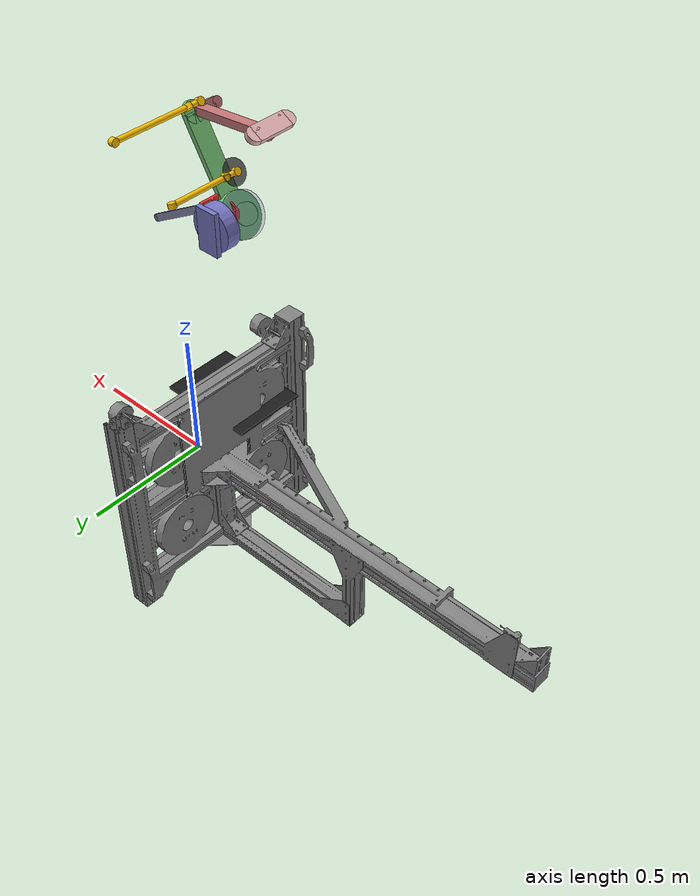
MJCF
<mujoco model="leg_two">
    <default>
        <geom contype="1" conaffinity="0" solref="0.005 1.0"/>

        <default class="part">
        <geom group="1" contype="2" conaffinity="1"/>
        </default>

        <default class="mockup">
        <geom group="1" contype="4"/>
        </default>

    </default>

    <asset>
        <material name="pelvis" rgba="0.45 0.45 0.75 1.0" />
        <material name="thigh" rgba="0.45 0.75 0.45 1.0" />
        <material name="shin" rgba="0.75 0.45 0.45 1.0" />
        <material name="foot" rgba="0.86 0.68 0.68 1.0" />
        <material name="loop1" rgba="0.52 0.52 0.65 1.0" />
        <material name="loop2" rgba="1.0 0.75 0.0 1.0" />
        <mesh name="cart" file="cart.STL"/>
        <mesh name="base" file="base.stl"/>
    </asset>

    <worldbody>
        <body name="base" pos="0.0 0.0 0.0">
            <!-- стойка робота -->
            <geom type="mesh" mesh="base" euler="0.0 0.0 90.0"  class="mockup"/>
            <!-- резиновый коврик -->
            <geom type="box" size="0.2 0.15 0.005" pos="0.0 -0.2 0.15" density="7700.0" rgba="0.1 0.1 0.1 1.0"/>

            <body name="cart" pos="0.0325 -0.14 1.0">
                <!-- каретка; к ней подсоединена вся нога -->
                <geom type="mesh" mesh="cart" euler="0.0 -180.0 -90.0" mass="0.2" rgba="0.9 0.2 0.2 1.0" class="mockup"/>
                <joint name="rail" type="slide" range="-0.0 0.5"/>

                <body name="pelvis" pos="-0.05 0.01 -0.085">
                    <!-- кронштейн для крепления первого В1, который приводит голень -->
                    <geom type="box" size="0.045 0.01 0.085" density="750" material="pelvis" class="part"/>
                    <!-- B1 с диаметром .85 -->
                    <geom type="cylinder" size="0.085 0.0275" pos="0.0 -0.0375 0.0" zaxis="0 1 0"
                        material="pelvis" mass="1.74" class="part"/>

                    <body name="thigh" pos="0.0 -0.1325 0.0" euler="180 60 -90">
                    <!-- 60ref было вместо 50 -->
                        <!-- тело звена; pos = box + 2cylinder + cylinder-->
                        <!-- фланец ко второму В1 -->
                        <geom type="cylinder" size="0.04 0.01" pos = "0 0 -0.0575" zaxis = "0 0 1"  rgba="0.45 0.45 0.75 0.25" class="part"/>
                        <!-- вторая часть фланеца к ротору второго В1 -->
                        <geom type="cylinder" size="0.085 0.01" pos = "0 0 -0.0375" zaxis = "0 0 1"  rgba="0.45 0.45 0.75 .25" class="part"/>
                        <geom type="cylinder" size="0.085 0.0275" pos="0.0 0.0 0.0" zaxis="0 0 1" mass="1.74" material="thigh" class="part"/>
                        <geom type="box" size="0.04 0.185 0.01" pos="0.0 0.185 0.0" density="2000" material="thigh" class="part"/>
                        <geom type="cylinder" size="0.04 0.01" pos="0 0.370 0" material="thigh" class="part"/>
                        <joint name="hip" type="hinge" ref="60" damping="0.256"/>

                        <body name="shin" pos="0.0 0.370 -0.0475" euler="-115 0 0">
                        <!-- 115 ref было вместо 90-->
                            <geom type="box" size="0.02 0.1565 0.015" pos="0.0 0.1565 0.0" density="2000" material="shin" class="part"/>
                            <geom type="cylinder" size="0.02 0.015" pos="0 0 0" material="shin" class="part"/>
                            <geom type="cylinder" size="0.02 0.015" pos="0 .313 0" material="shin" class="part"/>
                            <site name='tip' size = "0.025" pos = "0 .313 0" material ="shin"/>
                            <joint name="knee" type="hinge" ref="-115" damping="0.256"/>
                            <body pos="0 0 0" euler = "110 0 0">
                                <geom type="box" size="0.034 0.02 0.01" pos="-.034 0 0" material = "shin"  density="2000" class = "part"/>
                                <geom type="cylinder" size=".02 .01" pos="-0.068 0 0" density="2000" material ="shin"/>
                            </body>

                            <body name="foot" pos="0.0 0.313 0.0" euler="55 0 0">
                                <geom type="box" size="0.07 0.01 0.03" pos="0.0 0.03 0.0" density="100000" material="foot" class="part"/>
                                <geom type="cylinder" size="0.03 0.01" pos="0.07 0.03 0" material="foot" zaxis="0 1 0" class="part"/>
                                <geom type="cylinder" size="0.03 0.01" pos="-0.07 0.03 0" material="foot" zaxis="0 1 0" class="part"/>
                                <site name="foot_fsr" type="box" group="3" size="0.105 0.0125 0.04" pos="0.0 0.025 0.0"/>
                                <joint name="ankle_passive" type="hinge" ref="45" range="-40.0 60.0" damping="0.256"/>
                            </body>

                            <!-- на ступню -->
                            <body name="wishbone_up" pos="0.0 0.0 0.027" euler="-64 0 0">
                                    <geom type="cylinder" size="0.01 0.025" pos="0.025 0.0 0.0" zaxis="1 0 0" density="5000" material="loop2" class="part"/>
                                    <geom type="cylinder" size="0.015 0.01" pos="0.0 0.0 0.0" zaxis="0 0 1" density="7500" material="loop2" class="part"/>
                                    <joint name="joint3" type="hinge" damping="0.01"/>

                                    <body name="wishbone_low" pos="0.0 0.0 0.0" euler="-75 0 0">
                                        <geom type="cylinder" size="0.01 0.025" pos="0.025 0.0 0.0" zaxis="1 0 0" density="5000" material="loop2" class="part"/>
                                        <geom type="cylinder" size="0.015 0.01" pos="0.05 0.0 0.0" zaxis="0 0 1" density="7500" material="loop2" class="part"/>
                                        <body name="foot_rod_low" pos="0.05 0.0 0.0" euler="-131.97 0 0">
                                            <geom type="cylinder" size="0.01 0.1565" pos="0.1565 0.0 0.0" zaxis="1 0 0" density="5000" material="loop2" class="part"/>
                                            <geom type="cylinder" size="0.015 0.01" pos="0.313 0.0 0.0" zaxis="0 0 1" density="7500" material="loop2" class="part"/>
                                            <joint name="joint4" type="hinge" damping="0.256"/>
                                        </body>
                                    </body>

                            </body>

                        </body>

                        <geom type="cylinder" size="0.049 0.031" pos="-0.055 0.13485 0.02" zaxis="0 0 1"
                            mass="0.960" rgba="0.2 0.2 0.2 .75" class="part"/>

                        <!-- на ступню -->
                        <body name="foot_lever" pos="-0.055 0.13485 -0.02" euler="180 0 0">
                            <geom type="cylinder" size="0.01 0.025" pos="0.025 0.0 0.0" zaxis="1 0 0" density="5000" material="loop2" class="part"/>
                            <geom type="cylinder" size="0.015 0.01" pos="0.05 0.0 0.0" zaxis="0 0 1" density="7500" material="loop2" class="part"/>
                            <geom type="cylinder" size="0.015 0.01" pos="0.0 0.0 0.0" zaxis="0 0 1" density="7500" material="loop2" class="part"/>
                            <joint name="ankle_active" type="hinge" range="-45 45" damping="0.01"/>

                            <body name="foot_rod_up" pos="0.05 0.0 0.0" euler="-104 0 0">
                                <geom type="cylinder" size="0.01 0.121" pos="0.121 0.0 0.0" zaxis="1 0 0" density="5000" material="loop2" class="part"/>
                                <geom type="cylinder" size="0.015 0.01" pos="0.242 0.0 0.0" zaxis="0 0 1" density="7500" material="loop2" class="part"/>
                                <geom type="cylinder" size="0.015 0.01" pos="0.0 0.0 0.0" zaxis="0 0 1" density="7500" material="loop2" class="part"/>
                                <joint name="joint12" type="hinge" damping="0.256"/>
                            </body>

                        </body>

                    </body>

                    <body name="knee_lever" pos="0.0 -0.07 0.0" euler="0 -40 0">
                        <geom type="box" size=".034 .015 .005" pos = ".034 0 0" material ="loop1" density="2000"  zaxis = "0 1 0"  class="part"/>
                        <geom type="cylinder" size=".015 .005" pos="0.068 0 0" material ="loop1" zaxis = "0 1 0" density="5000" class="part"/>
                        <joint name="jointC" type = "hinge" axis="0 -1 0" ref = "040" range="-90 90"/>

                        <body name = 'knee_rod' pos=".068 0 0" euler = "0 69.7 0">
                            <geom type="box" size=".1765 .014  .0045" pos = ".1765 0 0" material ="loop1" density="2000" zaxis = "0 1 0"  class="part"/>
                            <geom type="cylinder" size=".014 .0045" pos="0.3530 0 0" material ="loop1" zaxis = "0 1 0" density="5000" class="part"/>
                            <joint name="jointD" type = "hinge" axis="0 -1 0" ref = "69.7"/>
                        </body>

                    </body>

                </body>

            </body>

        </body>

    </worldbody>

    <equality>
        <connect name="shin_constrain" body1="shin" body2="knee_rod" anchor="0.02326 -0.0639 0.0" solref="0.0005 1.0"/>
        <connect name="foot_constrain" body1="foot" body2="foot_rod_low" anchor="-0.045 0.009 0.0" solref="0.0005 1.0"/>
        <connect name="wishbone_constrain" body1="foot_rod_up" body2="wishbone_up" anchor="0.242 0.0 0.0" solref="0.0005 1.0"/>
    </equality>

   <actuator>
		<motor name="torque_hip" joint="hip"  gear="1" ctrllimited="true" ctrlrange="-100 100"/>
		<position name ="pos_servo_hip" joint="hip" kp="0"/>
		<velocity name ="vel_servo_hip" joint="hip" kv="0"/>

		<motor name="torque_knee" joint="knee"  gear="1" ctrllimited="true" ctrlrange="-100 100"/>
		<position name ="pos_servo_knee" joint="knee" kp="0"/>
		<velocity name ="vel_servo_knee" joint="knee" kv="0"/>

    </actuator>

</mujoco>
